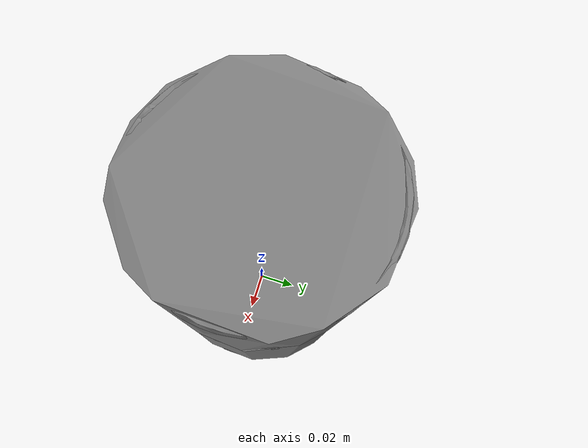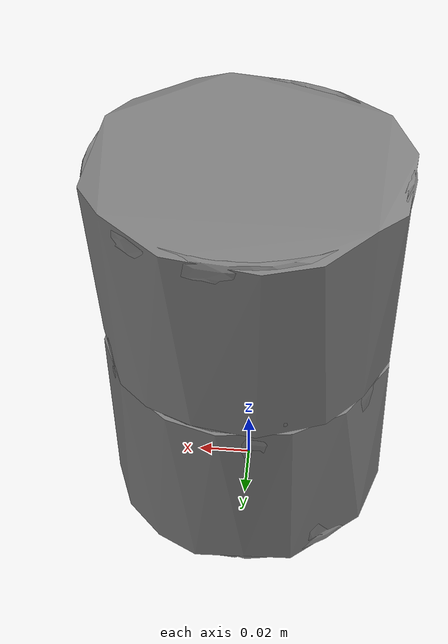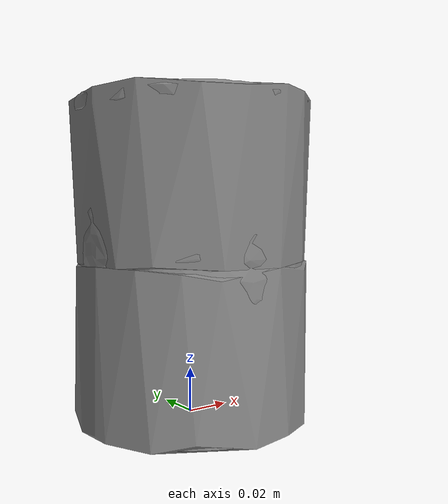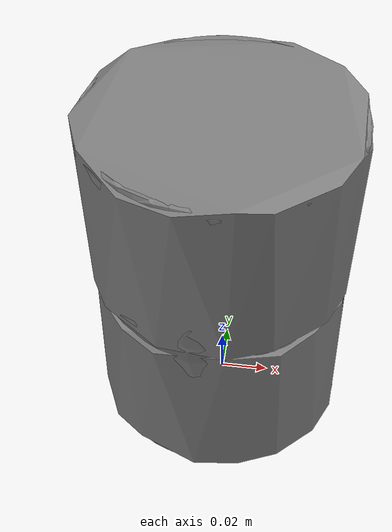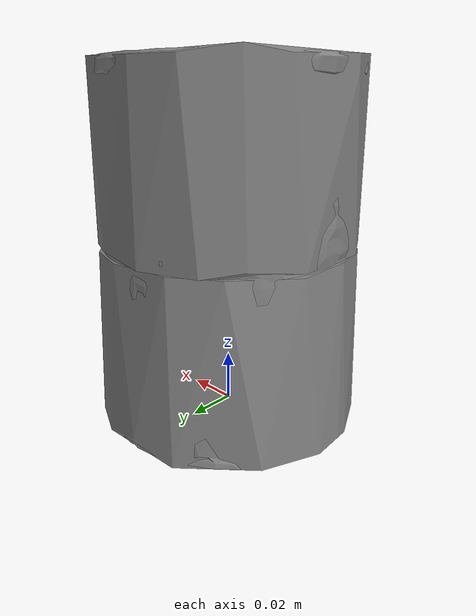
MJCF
<mujoco model="master_chef_can">
  <asset>
    <mesh file="../../meshes/ycb/master_chef_can/simple_mesh.stl" name="master_chef_can_mesh" scale="1 1 1"/>
    <mesh file="../../meshes/ycb/master_chef_can/master_chef_can_hull_1.stl" name="master_chef_can_hull_mesh_1" scale="1 1 1"/>
    <mesh file="../../meshes/ycb/master_chef_can/master_chef_can_hull_2.stl" name="master_chef_can_hull_mesh_2" scale="1 1 1"/>
  </asset>
  <worldbody>
    <body>
      <body name="object">
        <geom pos="0 0 0" mesh="master_chef_can_mesh" type="mesh" contype="0" conaffinity="0" group="1"/>
        <geom pos="0 0 0" mesh="master_chef_can_hull_mesh_1" type="mesh" margin="0.001" solimp="0.998 0.998 0.001" solref="0.001 1" density="400" friction="0.95 0.3 0.1" group="0" condim="4"/>
        <geom pos="0 0 0" mesh="master_chef_can_hull_mesh_2" type="mesh" margin="0.001" solimp="0.998 0.998 0.001" solref="0.001 1" density="400" friction="0.95 0.3 0.1" group="0" condim="4"/>
      </body>
      <site rgba="0 0 0 0" size="0.005" pos="0 0 -0.001" name="bottom_site"/>
      <site rgba="0 0 0 0" size="0.005" pos="0 0 0.02" name="top_site"/>
      <site rgba="0 0 0 0" size="0.005" pos="0.0375 0.02 0" name="horizontal_radius_site"/>
    </body>
  </worldbody>
</mujoco>
